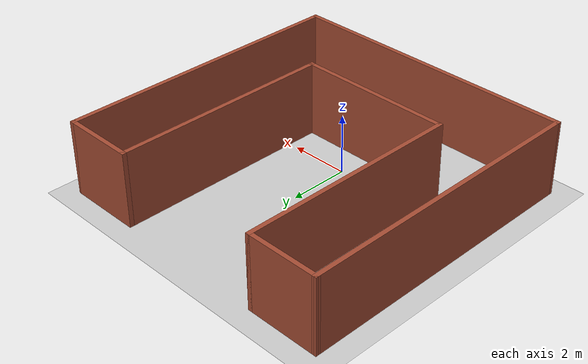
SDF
<sdf version="1.6">
 <world name="default">
  <light name="sun" type="directional">
   <pose>0 0 10 0 -0 0</pose>
   <diffuse>0.8 0.8 0.8 1</diffuse>
   <specular>0.2 0.2 0.2 1</specular>
   <attenuation>
    <range>1000</range>
    <constant>0.9</constant>
    <linear>0.01</linear>
    <quadratic>0.001</quadratic>
   </attenuation>
   <direction>-0.5 0.1 -0.9</direction>
  </light>
  <model name="ground_plane">
   <static>1</static>
   <link name="link">
    <collision name="collision">
     <geometry><plane><normal>0 0 1</normal><size>100 100</size></plane></geometry>
     <surface>
      <contact><collide_bitmask>65535</collide_bitmask></contact>
      <friction><ode><mu>100</mu><mu2>50</mu2></ode></friction>
     </surface>
    </collision>
    <visual name="visual">
     <cast_shadows>0</cast_shadows>
     <geometry><plane><normal>0 0 1</normal><size>100 100</size></plane></geometry>
     <material>
      <script><uri>file://media/materials/scripts/gazebo.material</uri><name>Gazebo/Grey</name></script>
     </material>
    </visual>
   </link>
  </model>
  <gravity>0 0 -9.8</gravity>
  <magnetic_field>6e-06 2.3e-05 -4.2e-05</magnetic_field>
  <atmosphere type="adiabatic"/>
  <physics name="default_physics" default="0" type="ode">
   <max_step_size>0.001</max_step_size>
   <real_time_factor>1</real_time_factor>
   <real_time_update_rate>1000</real_time_update_rate>
  </physics>
  <scene><ambient>0.4 0.4 0.4 1</ambient><background>0.7 0.7 0.7 1</background><shadows>1</shadows></scene>
  <spherical_coordinates>
   <surface_model>EARTH_WGS84</surface_model>
   <latitude_deg>0</latitude_deg>
   <longitude_deg>0</longitude_deg>
   <elevation>0</elevation>
   <heading_deg>0</heading_deg>
  </spherical_coordinates>
  <model name="U_Shaped_Env">
   <pose>-0.238785 1.36904 0 0 -0 0</pose>
   <link name="Wall_11">
    <collision name="Wall_11_Collision">
     <geometry><box><size>10 0.15 2.5</size></box></geometry>
     <pose>0 0 1.25 0 -0 0</pose>
    </collision>
    <visual name="Wall_11_Visual">
     <pose>0 0 1.25 0 -0 0</pose>
     <geometry><box><size>10 0.15 2.5</size></box></geometry>
     <material>
      <script><uri>file://media/materials/scripts/gazebo.material</uri><name>Gazebo/Bricks</name></script>
      <ambient>1 1 1 1</ambient>
     </material>
     <meta><layer>0</layer></meta>
    </visual>
    <pose>-4.93377 -0.008702 0 0 -0 1.57351</pose>
   </link>
   <link name="Wall_13">
    <collision name="Wall_13_Collision">
     <geometry><box><size>10.0177 0.15 2.5</size></box></geometry>
     <pose>0 0 1.25 0 -0 0</pose>
    </collision>
    <visual name="Wall_13_Visual">
     <pose>0 0 1.25 0 -0 0</pose>
     <geometry><box><size>10.0177 0.15 2.5</size></box></geometry>
     <material>
      <script><uri>file://media/materials/scripts/gazebo.material</uri><name>Gazebo/Bricks</name></script>
      <ambient>1 1 1 1</ambient>
     </material>
     <meta><layer>0</layer></meta>
    </visual>
    <pose>0.013399 -4.92491 0 0 -0 0.001783</pose>
   </link>
   <link name="Wall_15">
    <collision name="Wall_15_Collision">
     <geometry><box><size>10 0.15 2.5</size></box></geometry>
     <pose>0 0 1.25 0 -0 0</pose>
    </collision>
    <visual name="Wall_15_Visual">
     <pose>0 0 1.25 0 -0 0</pose>
     <geometry><box><size>10 0.15 2.5</size></box></geometry>
     <material>
      <script><uri>file://media/materials/scripts/gazebo.material</uri><name>Gazebo/Bricks</name></script>
      <ambient>1 1 1 1</ambient>
     </material>
     <meta><layer>0</layer></meta>
    </visual>
    <pose>4.94719 0.008887 0 0 -0 1.5708</pose>
   </link>
   <link name="Wall_17">
    <collision name="Wall_17_Collision">
     <geometry><box><size>2.5 0.15 2.5</size></box></geometry>
     <pose>0 0 1.25 0 -0 0</pose>
    </collision>
    <visual name="Wall_17_Visual">
     <pose>0 0 1.25 0 -0 0</pose>
     <geometry><box><size>2.5 0.15 2.5</size></box></geometry>
     <material>
      <script><uri>file://media/materials/scripts/gazebo.material</uri><name>Gazebo/Bricks</name></script>
      <ambient>1 1 1 1</ambient>
     </material>
     <meta><layer>0</layer></meta>
    </visual>
    <pose>-3.77215 4.9163 0 0 -0 0</pose>
   </link>
   <link name="Wall_18">
    <collision name="Wall_18_Collision">
     <geometry><box><size>7.5 0.15 2.5</size></box></geometry>
     <pose>0 0 1.25 0 -0 0</pose>
    </collision>
    <visual name="Wall_18_Visual">
     <pose>0 0 1.25 0 -0 0</pose>
     <geometry><box><size>7.5 0.15 2.5</size></box></geometry>
     <material>
      <script><uri>file://media/materials/scripts/gazebo.material</uri><name>Gazebo/Bricks</name></script>
      <ambient>1 1 1 1</ambient>
     </material>
     <meta><layer>0</layer></meta>
    </visual>
    <pose>-2.59715 1.2413 0 0 0 -1.5708</pose>
   </link>
   <link name="Wall_20">
    <collision name="Wall_20_Collision">
     <geometry><box><size>2.5 0.15 2.5</size></box></geometry>
     <pose>0 0 1.25 0 -0 0</pose>
    </collision>
    <visual name="Wall_20_Visual">
     <pose>0 0 1.25 0 -0 0</pose>
     <geometry><box><size>2.5 0.15 2.5</size></box></geometry>
     <material>
      <script><uri>file://media/materials/scripts/gazebo.material</uri><name>Gazebo/Bricks</name></script>
      <ambient>1 1 1 1</ambient>
     </material>
     <meta><layer>0</layer></meta>
    </visual>
    <pose>3.77219 4.93389 0 0 -0 3.14159</pose>
   </link>
   <link name="Wall_21">
    <collision name="Wall_21_Collision">
     <geometry><box><size>7.5 0.15 2.5</size></box></geometry>
     <pose>0 0 1.25 0 -0 0</pose>
    </collision>
    <visual name="Wall_21_Visual">
     <pose>0 0 1.25 0 -0 0</pose>
     <geometry><box><size>7.5 0.15 2.5</size></box></geometry>
     <material>
      <script><uri>file://media/materials/scripts/gazebo.material</uri><name>Gazebo/Bricks</name></script>
      <ambient>1 1 1 1</ambient>
     </material>
     <meta><layer>0</layer></meta>
    </visual>
    <pose>2.59719 1.25889 0 0 0 -1.5708</pose>
   </link>
   <link name="Wall_22">
    <collision name="Wall_22_Collision">
     <geometry><box><size>5.25 0.15 2.5</size></box></geometry>
     <pose>0 0 1.25 0 -0 0</pose>
    </collision>
    <visual name="Wall_22_Visual">
     <pose>0 0 1.25 0 -0 0</pose>
     <geometry><box><size>5.25 0.15 2.5</size></box></geometry>
     <material>
      <script><uri>file://media/materials/scripts/gazebo.material</uri><name>Gazebo/Bricks</name></script>
      <ambient>1 1 1 1</ambient>
     </material>
     <meta><layer>0</layer></meta>
    </visual>
    <pose>0.047194 -2.41611 0 0 -0 3.14159</pose>
   </link>
   <static>1</static>
  </model>
 </world>
</sdf>
